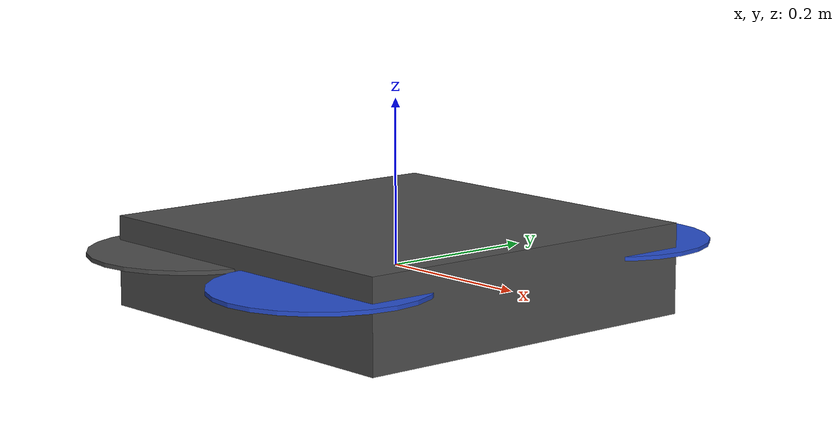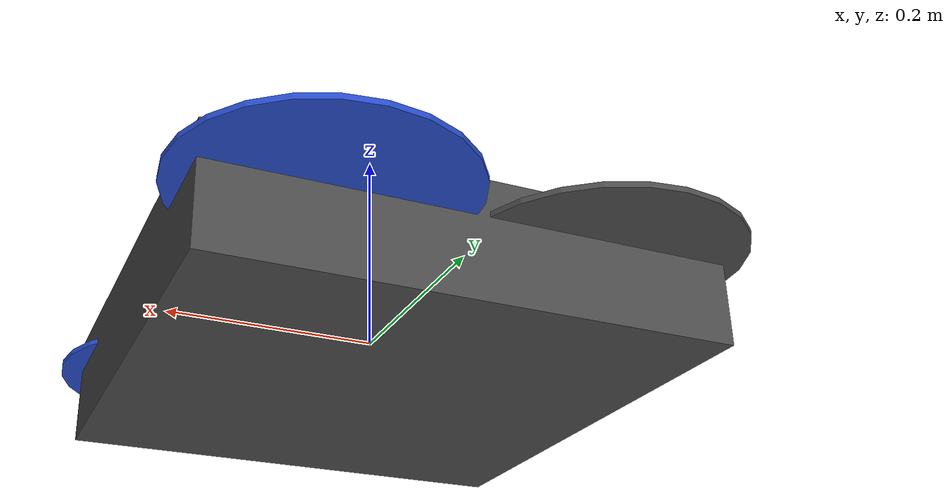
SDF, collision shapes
<sdf version='1.6'>
  <model name='iris'>
    <link name='base_link'>
      <pose frame=''>0 0 0 0 -0 0</pose>
      <inertial>
        <pose frame=''>0 0 0 0 -0 0</pose>
        <mass>1.5</mass>
        <inertia>
          <ixx>0.029125</ixx>
          <ixy>0</ixy>
          <ixz>0</ixz>
          <iyy>0.029125</iyy>
          <iyz>0</iyz>
          <izz>0.055225</izz>
        </inertia>
      </inertial>
      <collision name='base_link_inertia_collision'>
        <pose frame=''>0 0 0 0 -0 0</pose>
        <geometry>
          <box>
            <size>0.47 0.47 0.11</size>
          </box>
        </geometry>
        <surface>
          <contact>
            <ode>
              <min_depth>0.001</min_depth>
              <max_vel>0</max_vel>
            </ode>
          </contact>
          <friction>
            <ode/>
          </friction>
        </surface>
      </collision>
      <visual name='base_link_inertia_visual'>
        <pose frame=''>0 0 0 0 -0 0</pose>
        <geometry>
          <mesh>
            <scale>1 1 1</scale>
            <uri>model://iris_dual_cam/meshes/iris.stl</uri>
          </mesh>
        </geometry>
        <material>
          <script>
            <name>Gazebo/DarkGrey</name>
            <uri>file://media/materials/scripts/gazebo.material</uri>
          </script>
        </material>
      </visual>
      <gravity>1</gravity>
      <velocity_decay/>
    </link>
    <link name='/imu_link'>
      <pose frame=''>0 0 0 0 -0 0</pose>
      <inertial>
        <pose frame=''>0 0 0 0 -0 0</pose>
        <mass>0.015</mass>
        <inertia>
          <ixx>1e-05</ixx>
          <ixy>0</ixy>
          <ixz>0</ixz>
          <iyy>1e-05</iyy>
          <iyz>0</iyz>
          <izz>1e-05</izz>
        </inertia>
      </inertial>
    </link>
    <joint name='/imu_joint' type='revolute'>
      <child>/imu_link</child>
      <parent>base_link</parent>
      <axis>
        <xyz>1 0 0</xyz>
        <limit>
          <lower>0</lower>
          <upper>0</upper>
          <effort>0</effort>
          <velocity>0</velocity>
        </limit>
        <dynamics>
          <spring_reference>0</spring_reference>
          <spring_stiffness>0</spring_stiffness>
        </dynamics>
        <use_parent_model_frame>1</use_parent_model_frame>
      </axis>
    </joint>
    <link name='rotor_0'>
      <pose frame=''>0.13 -0.22 0.023 0 -0 0</pose>
      <inertial>
        <pose frame=''>0 0 0 0 -0 0</pose>
        <mass>0.005</mass>
        <inertia>
          <ixx>9.75e-07</ixx>
          <ixy>0</ixy>
          <ixz>0</ixz>
          <iyy>0.000273104</iyy>
          <iyz>0</iyz>
          <izz>0.000274004</izz>
        </inertia>
      </inertial>
      <collision name='rotor_0_collision'>
        <pose frame=''>0 0 0 0 -0 0</pose>
        <geometry>
          <cylinder>
            <length>0.005</length>
            <radius>0.128</radius>
          </cylinder>
        </geometry>
        <surface>
          <contact>
            <ode/>
          </contact>
          <friction>
            <ode/>
          </friction>
        </surface>
      </collision>
      <visual name='rotor_0_visual'>
        <pose frame=''>0 0 0 0 -0 0</pose>
        <geometry>
          <mesh>
            <scale>1 1 1</scale>
            <uri>model://iris_dual_cam/meshes/iris_prop_ccw.dae</uri>
          </mesh>
        </geometry>
        <material>
          <script>
            <name>Gazebo/Blue</name>
            <uri>file://media/materials/scripts/gazebo.material</uri>
          </script>
        </material>
      </visual>
      <gravity>1</gravity>
      <velocity_decay/>
    </link>
    <joint name='rotor_0_joint' type='revolute'>
      <child>rotor_0</child>
      <parent>base_link</parent>
      <axis>
        <xyz>0 0 1</xyz>
        <limit>
          <lower>-1e+16</lower>
          <upper>1e+16</upper>
        </limit>
        <dynamics>
          <spring_reference>0</spring_reference>
          <spring_stiffness>0</spring_stiffness>
        </dynamics>
        <use_parent_model_frame>1</use_parent_model_frame>
      </axis>
    </joint>
    <link name='rotor_1'>
      <pose frame=''>-0.13 0.2 0.023 0 -0 0</pose>
      <inertial>
        <pose frame=''>0 0 0 0 -0 0</pose>
        <mass>0.005</mass>
        <inertia>
          <ixx>9.75e-07</ixx>
          <ixy>0</ixy>
          <ixz>0</ixz>
          <iyy>0.000273104</iyy>
          <iyz>0</iyz>
          <izz>0.000274004</izz>
        </inertia>
      </inertial>
      <collision name='rotor_1_collision'>
        <pose frame=''>0 0 0 0 -0 0</pose>
        <geometry>
          <cylinder>
            <length>0.005</length>
            <radius>0.128</radius>
          </cylinder>
        </geometry>
        <surface>
          <contact>
            <ode/>
          </contact>
          <friction>
            <ode/>
          </friction>
        </surface>
      </collision>
      <visual name='rotor_1_visual'>
        <pose frame=''>0 0 0 0 -0 0</pose>
        <geometry>
          <mesh>
            <scale>1 1 1</scale>
            <uri>model://iris_dual_cam/meshes/iris_prop_ccw.dae</uri>
          </mesh>
        </geometry>
        <material>
          <script>
            <name>Gazebo/DarkGrey</name>
            <uri>file://media/materials/scripts/gazebo.material</uri>
          </script>
        </material>
      </visual>
      <gravity>1</gravity>
      <velocity_decay/>
    </link>
    <joint name='rotor_1_joint' type='revolute'>
      <child>rotor_1</child>
      <parent>base_link</parent>
      <axis>
        <xyz>0 0 1</xyz>
        <limit>
          <lower>-1e+16</lower>
          <upper>1e+16</upper>
        </limit>
        <dynamics>
          <spring_reference>0</spring_reference>
          <spring_stiffness>0</spring_stiffness>
        </dynamics>
        <use_parent_model_frame>1</use_parent_model_frame>
      </axis>
    </joint>
    <link name='rotor_2'>
      <pose frame=''>0.13 0.22 0.023 0 -0 0</pose>
      <inertial>
        <pose frame=''>0 0 0 0 -0 0</pose>
        <mass>0.005</mass>
        <inertia>
          <ixx>9.75e-07</ixx>
          <ixy>0</ixy>
          <ixz>0</ixz>
          <iyy>0.000273104</iyy>
          <iyz>0</iyz>
          <izz>0.000274004</izz>
        </inertia>
      </inertial>
      <collision name='rotor_2_collision'>
        <pose frame=''>0 0 0 0 -0 0</pose>
        <geometry>
          <cylinder>
            <length>0.005</length>
            <radius>0.128</radius>
          </cylinder>
        </geometry>
        <surface>
          <contact>
            <ode/>
          </contact>
          <friction>
            <ode/>
          </friction>
        </surface>
      </collision>
      <visual name='rotor_2_visual'>
        <pose frame=''>0 0 0 0 -0 0</pose>
        <geometry>
          <mesh>
            <scale>1 1 1</scale>
            <uri>model://iris_dual_cam/meshes/iris_prop_cw.dae</uri>
          </mesh>
        </geometry>
        <material>
          <script>
            <name>Gazebo/Blue</name>
            <uri>file://media/materials/scripts/gazebo.material</uri>
          </script>
        </material>
      </visual>
      <gravity>1</gravity>
      <velocity_decay/>
    </link>
    <joint name='rotor_2_joint' type='revolute'>
      <child>rotor_2</child>
      <parent>base_link</parent>
      <axis>
        <xyz>0 0 1</xyz>
        <limit>
          <lower>-1e+16</lower>
          <upper>1e+16</upper>
        </limit>
        <dynamics>
          <spring_reference>0</spring_reference>
          <spring_stiffness>0</spring_stiffness>
        </dynamics>
        <use_parent_model_frame>1</use_parent_model_frame>
      </axis>
    </joint>
    <link name='rotor_3'>
      <pose frame=''>-0.13 -0.2 0.023 0 -0 0</pose>
      <inertial>
        <pose frame=''>0 0 0 0 -0 0</pose>
        <mass>0.005</mass>
        <inertia>
          <ixx>9.75e-07</ixx>
          <ixy>0</ixy>
          <ixz>0</ixz>
          <iyy>0.000273104</iyy>
          <iyz>0</iyz>
          <izz>0.000274004</izz>
        </inertia>
      </inertial>
      <collision name='rotor_3_collision'>
        <pose frame=''>0 0 0 0 -0 0</pose>
        <geometry>
          <cylinder>
            <length>0.005</length>
            <radius>0.128</radius>
          </cylinder>
        </geometry>
        <surface>
          <contact>
            <ode/>
          </contact>
          <friction>
            <ode/>
          </friction>
        </surface>
      </collision>
      <visual name='rotor_3_visual'>
        <pose frame=''>0 0 0 0 -0 0</pose>
        <geometry>
          <mesh>
            <scale>1 1 1</scale>
            <uri>model://iris_dual_cam/meshes/iris_prop_cw.dae</uri>
          </mesh>
        </geometry>
        <material>
          <script>
            <name>Gazebo/DarkGrey</name>
            <uri>file://media/materials/scripts/gazebo.material</uri>
          </script>
        </material>
      </visual>
      <gravity>1</gravity>
      <velocity_decay/>
    </link>
    <joint name='rotor_3_joint' type='revolute'>
      <child>rotor_3</child>
      <parent>base_link</parent>
      <axis>
        <xyz>0 0 1</xyz>
        <limit>
          <lower>-1e+16</lower>
          <upper>1e+16</upper>
        </limit>
        <dynamics>
          <spring_reference>0</spring_reference>
          <spring_stiffness>0</spring_stiffness>
        </dynamics>
        <use_parent_model_frame>1</use_parent_model_frame>
      </axis>
    </joint>

    <link name='cam_frontal'>
      <pose>0.124 0 0 0 -0 0</pose>
      <inertial>
        <mass>0.015</mass>
        <inertia>
          <ixx>4.15e-6</ixx>
          <ixy>0</ixy>
          <ixz>0</ixz>
          <iyy>2.407e-6</iyy>
          <iyz>0</iyz>
          <izz>2.407e-6</izz>
        </inertia>
      </inertial>
      <collision name='cam_frontal_collision'>
        <geometry>
          <box>
            <size>0.01 0.01 0.01</size>
          </box>
        </geometry>
        <max_contacts>10</max_contacts>
        <surface>
          <contact>
            <ode/>
          </contact>
          <bounce/>
          <friction>
            <ode/>
          </friction>
        </surface>
      </collision>
      <visual name='cam_frontal_visual'>
        <geometry>
          <box>
            <size>0.01 0.01 0.01</size>
          </box>
        </geometry>
      </visual>
      <sensor name='camera' type='camera'>
        <camera name='cam_frontal'>
          <horizontal_fov>1.047</horizontal_fov>
          <image>
            <width>320</width>
            <height>240</height>
          </image>
          <clip>
            <near>0.1</near>
            <far>100</far>
          </clip>
          <lens>
            <type>custom</type>
            <custom_function>
              <c1>1.05</c1>
              <c2>4</c2>
              <f>1</f>
              <fun>tan</fun>
            </custom_function>
            <scale_to_hfov>1</scale_to_hfov>
            <cutoff_angle>3.1415</cutoff_angle>
            <env_texture_size>1080</env_texture_size>
          </lens>
        </camera>
        <always_on>1</always_on>
        <update_rate>30</update_rate>
        <visualize>1</visualize>
        <plugin name='camera_plugin' filename='libgazebo_ros_camera.so'>
          <robotNamespace></robotNamespace>
          <alwaysOn>true</alwaysOn>
          <imageTopicName>image_raw</imageTopicName>
          <cameraInfoTopicName>camera_info</cameraInfoTopicName>
          <updateRate>30.0</updateRate>
          <cameraName>cam_frontal</cameraName>
          <frameName>/cam_frontal_link</frameName>
          <CxPrime>320.5</CxPrime>
          <Cx>320.5</Cx>
          <Cy>240.5</Cy>
          <hackBaseline>0</hackBaseline>
          <focalLength>277.191356</focalLength>
          <distortionK1>0.0</distortionK1>
          <distortionK2>0.0</distortionK2>
          <distortionK3>0.0</distortionK3>
          <distortionT1>0.0</distortionT1>
          <distortionT2>0.0</distortionT2>
        </plugin>
      </sensor>
      <self_collide>0</self_collide>
      <kinematic>0</kinematic>
    </link>

    <joint name="cam_frontal_joint" type="fixed">
      <child>cam_frontal</child>
      <parent>base_link</parent>
      <axis>
        <xyz>0 0 1</xyz>
        <limit>
          <upper>0</upper>
          <lower>0</lower>
        </limit>
      </axis>
    </joint>

    <link name='cam_ventral'>
      <pose>0 0 -0.037 0 1.57 0</pose>
      <inertial>
        <mass>0.015</mass>
        <inertia>
          <ixx>4.15e-6</ixx>
          <ixy>0</ixy>
          <ixz>0</ixz>
          <iyy>2.407e-6</iyy>
          <iyz>0</iyz>
          <izz>2.407e-6</izz>
        </inertia>
      </inertial>
      <collision name='cam_ventral_collision'>
        <geometry>
          <box>
            <size>0.01 0.01 0.01</size>
          </box>
        </geometry>
        <max_contacts>10</max_contacts>
        <surface>
          <contact>
            <ode/>
          </contact>
          <bounce/>
          <friction>
            <ode/>
          </friction>
        </surface>
      </collision>
      <visual name='cam_ventral_visual'>
        <geometry>
          <box>
            <size>0.01 0.01 0.01</size>
          </box>
        </geometry>
      </visual>
      <sensor name='camera' type='camera'>
        <camera name='cam_ventral'>
          <horizontal_fov>1.047</horizontal_fov>
          <image>
            <width>320</width>
            <height>240</height>
          </image>
          <clip>
            <near>0.1</near>
            <far>100</far>
          </clip>
          <lens>
            <type>custom</type>
            <custom_function>
              <c1>1.05</c1>
              <c2>4</c2>
              <f>1</f>
              <fun>tan</fun>
            </custom_function>
            <scale_to_hfov>1</scale_to_hfov>
            <cutoff_angle>3.1415</cutoff_angle>
            <env_texture_size>1080</env_texture_size>
          </lens>
        </camera>
        <always_on>1</always_on>
        <update_rate>30</update_rate>
        <visualize>1</visualize>
        <plugin name='camera_plugin' filename='libgazebo_ros_camera.so'>
          <robotNamespace></robotNamespace>
          <alwaysOn>true</alwaysOn>
          <imageTopicName>image_raw</imageTopicName>
          <cameraInfoTopicName>camera_info</cameraInfoTopicName>
          <updateRate>30.0</updateRate>
          <cameraName>cam_ventral</cameraName>
          <frameName>/cam_ventral_link</frameName>
          <CxPrime>320.5</CxPrime>
          <Cx>320.5</Cx>
          <Cy>240.5</Cy>
          <hackBaseline>0</hackBaseline>
          <focalLength>277.191356</focalLength>
          <distortionK1>0.0</distortionK1>
          <distortionK2>0.0</distortionK2>
          <distortionK3>0.0</distortionK3>
          <distortionT1>0.0</distortionT1>
          <distortionT2>0.0</distortionT2>
        </plugin>
      </sensor>
      <self_collide>0</self_collide>
      <kinematic>0</kinematic>
    </link>

    <joint name="cam_ventral_joint" type="fixed">
      <child>cam_ventral</child>
      <parent>base_link</parent>
      <axis>
        <xyz>0 0 1</xyz>
        <limit>
          <upper>0</upper>
          <lower>0</lower>
        </limit>
      </axis>
    </joint>

    <plugin name='rosbag' filename='libgazebo_multirotor_base_plugin.so'>
      <robotNamespace/>
      <linkName>base_link</linkName>
      <rotorVelocitySlowdownSim>10</rotorVelocitySlowdownSim>
    </plugin>
    <plugin name='front_right_motor_model' filename='libgazebo_motor_model.so'>
      <robotNamespace/>
      <jointName>rotor_0_joint</jointName>
      <linkName>rotor_0</linkName>
      <turningDirection>ccw</turningDirection>
      <timeConstantUp>0.0125</timeConstantUp>
      <timeConstantDown>0.025</timeConstantDown>
      <maxRotVelocity>1100</maxRotVelocity>
      <motorConstant>8.54858e-06</motorConstant>
      <momentConstant>0.06</momentConstant>
      <commandSubTopic>/gazebo/command/motor_speed</commandSubTopic>
      <motorNumber>0</motorNumber>
      <rotorDragCoefficient>0.000175</rotorDragCoefficient>
      <rollingMomentCoefficient>1e-06</rollingMomentCoefficient>
      <motorSpeedPubTopic>/motor_speed/0</motorSpeedPubTopic>
      <rotorVelocitySlowdownSim>10</rotorVelocitySlowdownSim>
    </plugin>
    <plugin name='back_left_motor_model' filename='libgazebo_motor_model.so'>
      <robotNamespace/>
      <jointName>rotor_1_joint</jointName>
      <linkName>rotor_1</linkName>
      <turningDirection>ccw</turningDirection>
      <timeConstantUp>0.0125</timeConstantUp>
      <timeConstantDown>0.025</timeConstantDown>
      <maxRotVelocity>1100</maxRotVelocity>
      <motorConstant>8.54858e-06</motorConstant>
      <momentConstant>0.06</momentConstant>
      <commandSubTopic>/gazebo/command/motor_speed</commandSubTopic>
      <motorNumber>1</motorNumber>
      <rotorDragCoefficient>0.000175</rotorDragCoefficient>
      <rollingMomentCoefficient>1e-06</rollingMomentCoefficient>
      <motorSpeedPubTopic>/motor_speed/1</motorSpeedPubTopic>
      <rotorVelocitySlowdownSim>10</rotorVelocitySlowdownSim>
    </plugin>
    <plugin name='front_left_motor_model' filename='libgazebo_motor_model.so'>
      <robotNamespace/>
      <jointName>rotor_2_joint</jointName>
      <linkName>rotor_2</linkName>
      <turningDirection>cw</turningDirection>
      <timeConstantUp>0.0125</timeConstantUp>
      <timeConstantDown>0.025</timeConstantDown>
      <maxRotVelocity>1100</maxRotVelocity>
      <motorConstant>8.54858e-06</motorConstant>
      <momentConstant>0.06</momentConstant>
      <commandSubTopic>/gazebo/command/motor_speed</commandSubTopic>
      <motorNumber>2</motorNumber>
      <rotorDragCoefficient>0.000175</rotorDragCoefficient>
      <rollingMomentCoefficient>1e-06</rollingMomentCoefficient>
      <motorSpeedPubTopic>/motor_speed/2</motorSpeedPubTopic>
      <rotorVelocitySlowdownSim>10</rotorVelocitySlowdownSim>
    </plugin>
    <plugin name='back_right_motor_model' filename='libgazebo_motor_model.so'>
      <robotNamespace/>
      <jointName>rotor_3_joint</jointName>
      <linkName>rotor_3</linkName>
      <turningDirection>cw</turningDirection>
      <timeConstantUp>0.0125</timeConstantUp>
      <timeConstantDown>0.025</timeConstantDown>
      <maxRotVelocity>1100</maxRotVelocity>
      <motorConstant>8.54858e-06</motorConstant>
      <momentConstant>0.06</momentConstant>
      <commandSubTopic>/gazebo/command/motor_speed</commandSubTopic>
      <motorNumber>3</motorNumber>
      <rotorDragCoefficient>0.000175</rotorDragCoefficient>
      <rollingMomentCoefficient>1e-06</rollingMomentCoefficient>
      <motorSpeedPubTopic>/motor_speed/3</motorSpeedPubTopic>
      <rotorVelocitySlowdownSim>10</rotorVelocitySlowdownSim>
    </plugin>
    <model name='gps0'>
      <link name='link'>
        <pose frame=''>0 0 0 0 -0 0</pose>
        <inertial>
          <pose frame=''>0 0 0 0 -0 0</pose>
          <mass>0.01</mass>
          <inertia>
            <ixx>2.1733e-06</ixx>
            <ixy>0</ixy>
            <ixz>0</ixz>
            <iyy>2.1733e-06</iyy>
            <iyz>0</iyz>
            <izz>1.8e-07</izz>
          </inertia>
        </inertial>
        <visual name='visual'>
          <geometry>
            <cylinder>
              <radius>0.01</radius>
              <length>0.002</length>
            </cylinder>
          </geometry>
          <material>
            <script>
              <name>Gazebo/Black</name>
              <uri>__default__</uri>
            </script>
          </material>
        </visual>
        <sensor name='gps' type='gps'>
          <pose frame=''>0 0 0 0 -0 0</pose>
          <plugin name='gps_plugin' filename='libgazebo_gps_plugin.so'>
            <robotNamespace/>
            <gpsNoise>1</gpsNoise>
            <gpsXYRandomWalk>2.0</gpsXYRandomWalk>
            <gpsZRandomWalk>4.0</gpsZRandomWalk>
            <gpsXYNoiseDensity>0.0002</gpsXYNoiseDensity>
            <gpsZNoiseDensity>0.0004</gpsZNoiseDensity>
            <gpsVXYNoiseDensity>0.2</gpsVXYNoiseDensity>
            <gpsVZNoiseDensity>0.4</gpsVZNoiseDensity>
          </plugin>
        </sensor>
      </link>
    </model>
    <joint name='gps0_joint' type='fixed'>
      <parent>base_link</parent>
      <child>gps0::link</child>
    </joint>
    <plugin name='groundtruth_plugin' filename='libgazebo_groundtruth_plugin.so'>
      <robotNamespace/>
    </plugin>
    <plugin name='magnetometer_plugin' filename='libgazebo_magnetometer_plugin.so'>
      <robotNamespace/>
      <pubRate>100</pubRate>
      <noiseDensity>0.0004</noiseDensity>
      <randomWalk>6.4e-06</randomWalk>
      <biasCorrelationTime>600</biasCorrelationTime>
      <magTopic>/mag</magTopic>
    </plugin>
    <plugin name='barometer_plugin' filename='libgazebo_barometer_plugin.so'>
      <robotNamespace/>
      <pubRate>50</pubRate>
      <baroTopic>/baro</baroTopic>
      <baroDriftPaPerSec>0</baroDriftPaPerSec>
    </plugin>
    <plugin name='mavlink_interface' filename='libgazebo_mavlink_interface.so'>
      <robotNamespace/>
      <imuSubTopic>/imu</imuSubTopic>
      <magSubTopic>/mag</magSubTopic>
      <baroSubTopic>/baro</baroSubTopic>
      <mavlink_addr>INADDR_ANY</mavlink_addr>
      <mavlink_udp_port>14560</mavlink_udp_port>
      <mavlink_tcp_port>4560</mavlink_tcp_port>
      <serialEnabled>0</serialEnabled>
      <serialDevice>/dev/ttyACM0</serialDevice>
      <baudRate>921600</baudRate>
      <qgc_addr>INADDR_ANY</qgc_addr>
      <qgc_udp_port>14550</qgc_udp_port>
      <sdk_addr>INADDR_ANY</sdk_addr>
      <sdk_udp_port>14540</sdk_udp_port>
      <hil_mode>0</hil_mode>
      <hil_state_level>0</hil_state_level>
      <vehicle_is_tailsitter>0</vehicle_is_tailsitter>
      <send_vision_estimation>0</send_vision_estimation>
      <send_odometry>1</send_odometry>
      <enable_lockstep>1</enable_lockstep>
      <use_tcp>1</use_tcp>
      <motorSpeedCommandPubTopic>/gazebo/command/motor_speed</motorSpeedCommandPubTopic>
      <control_channels>
        <channel name='rotor1'>
          <input_index>0</input_index>
          <input_offset>0</input_offset>
          <input_scaling>1000</input_scaling>
          <zero_position_disarmed>0</zero_position_disarmed>
          <zero_position_armed>100</zero_position_armed>
          <joint_control_type>velocity</joint_control_type>
        </channel>
        <channel name='rotor2'>
          <input_index>1</input_index>
          <input_offset>0</input_offset>
          <input_scaling>1000</input_scaling>
          <zero_position_disarmed>0</zero_position_disarmed>
          <zero_position_armed>100</zero_position_armed>
          <joint_control_type>velocity</joint_control_type>
        </channel>
        <channel name='rotor3'>
          <input_index>2</input_index>
          <input_offset>0</input_offset>
          <input_scaling>1000</input_scaling>
          <zero_position_disarmed>0</zero_position_disarmed>
          <zero_position_armed>100</zero_position_armed>
          <joint_control_type>velocity</joint_control_type>
        </channel>
        <channel name='rotor4'>
          <input_index>3</input_index>
          <input_offset>0</input_offset>
          <input_scaling>1000</input_scaling>
          <zero_position_disarmed>0</zero_position_disarmed>
          <zero_position_armed>100</zero_position_armed>
          <joint_control_type>velocity</joint_control_type>
        </channel>
        <channel name='rotor5'>
          <input_index>4</input_index>
          <input_offset>1</input_offset>
          <input_scaling>324.6</input_scaling>
          <zero_position_disarmed>0</zero_position_disarmed>
          <zero_position_armed>0</zero_position_armed>
          <joint_control_type>velocity</joint_control_type>
          <joint_control_pid>
            <p>0.1</p>
            <i>0</i>
            <d>0</d>
            <iMax>0.0</iMax>
            <iMin>0.0</iMin>
            <cmdMax>2</cmdMax>
            <cmdMin>-2</cmdMin>
          </joint_control_pid>
          <joint_name>zephyr_delta_wing::propeller_joint</joint_name>
        </channel>
        <channel name='rotor6'>
          <input_index>5</input_index>
          <input_offset>0</input_offset>
          <input_scaling>0.524</input_scaling>
          <zero_position_disarmed>0</zero_position_disarmed>
          <zero_position_armed>0</zero_position_armed>
          <joint_control_type>position</joint_control_type>
          <joint_name>zephyr_delta_wing::flap_left_joint</joint_name>
          <joint_control_pid>
            <p>10.0</p>
            <i>0</i>
            <d>0</d>
            <iMax>0</iMax>
            <iMin>0</iMin>
            <cmdMax>20</cmdMax>
            <cmdMin>-20</cmdMin>
          </joint_control_pid>
        </channel>
        <channel name='rotor7'>
          <input_index>6</input_index>
          <input_offset>0</input_offset>
          <input_scaling>0.524</input_scaling>
          <zero_position_disarmed>0</zero_position_disarmed>
          <zero_position_armed>0</zero_position_armed>
          <joint_control_type>position</joint_control_type>
          <joint_name>zephyr_delta_wing::flap_right_joint</joint_name>
          <joint_control_pid>
            <p>10.0</p>
            <i>0</i>
            <d>0</d>
            <iMax>0</iMax>
            <iMin>0</iMin>
            <cmdMax>20</cmdMax>
            <cmdMin>-20</cmdMin>
          </joint_control_pid>
        </channel>
        <channel name='rotor8'>
          <input_index>7</input_index>
          <input_offset>0</input_offset>
          <input_scaling>0.524</input_scaling>
          <zero_position_disarmed>0</zero_position_disarmed>
          <zero_position_armed>0</zero_position_armed>
          <joint_control_type>position</joint_control_type>
        </channel>
      </control_channels>
    </plugin>
    <static>0</static>
    <plugin name='rotors_gazebo_imu_plugin' filename='libgazebo_imu_plugin.so'>
      <robotNamespace/>
      <linkName>/imu_link</linkName>
      <imuTopic>/imu</imuTopic>
      <gyroscopeNoiseDensity>0.00018665</gyroscopeNoiseDensity>
      <gyroscopeRandomWalk>3.8785e-05</gyroscopeRandomWalk>
      <gyroscopeBiasCorrelationTime>1000.0</gyroscopeBiasCorrelationTime>
      <gyroscopeTurnOnBiasSigma>0.0087</gyroscopeTurnOnBiasSigma>
      <accelerometerNoiseDensity>0.00186</accelerometerNoiseDensity>
      <accelerometerRandomWalk>0.006</accelerometerRandomWalk>
      <accelerometerBiasCorrelationTime>300.0</accelerometerBiasCorrelationTime>
      <accelerometerTurnOnBiasSigma>0.196</accelerometerTurnOnBiasSigma>
    </plugin>
  </model>
</sdf>
